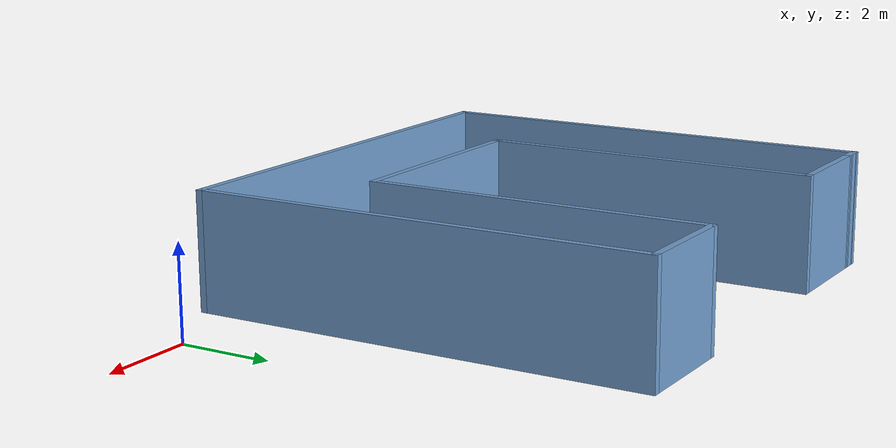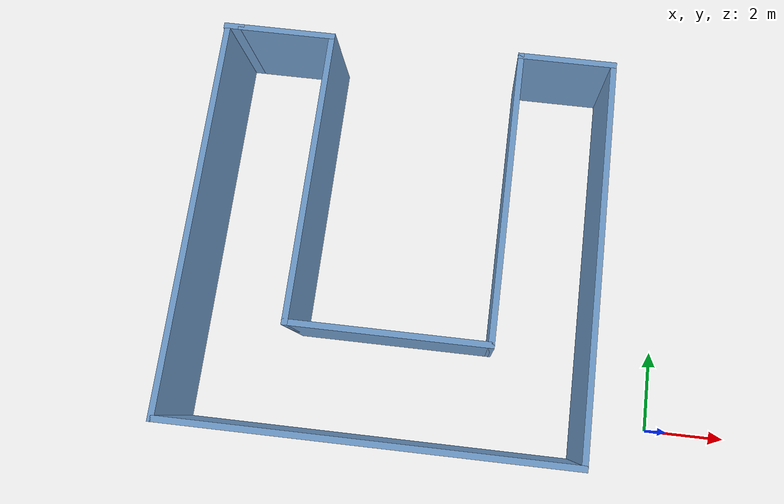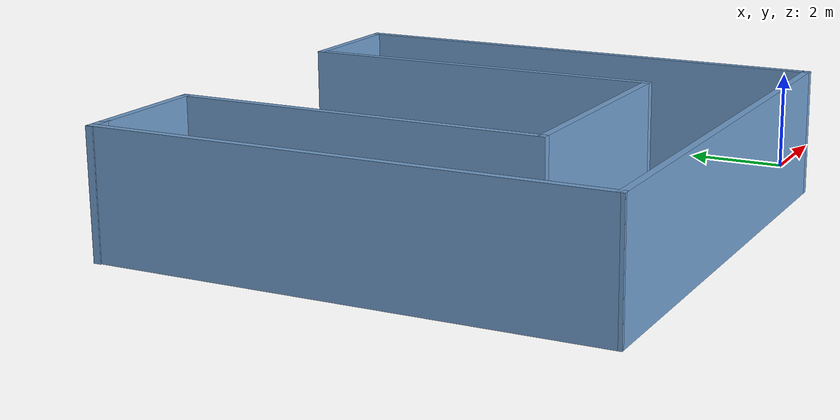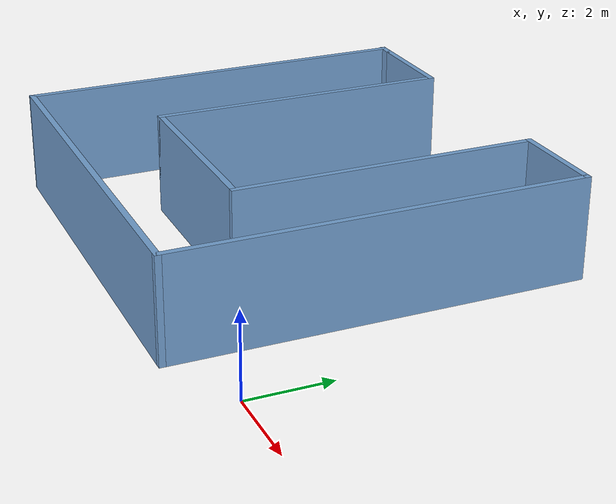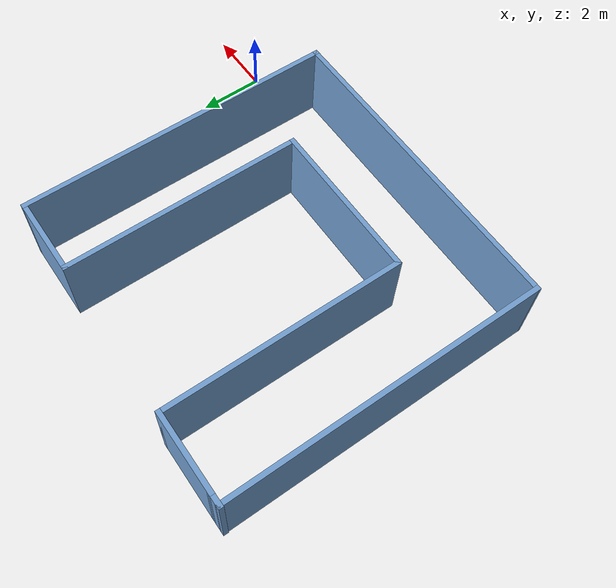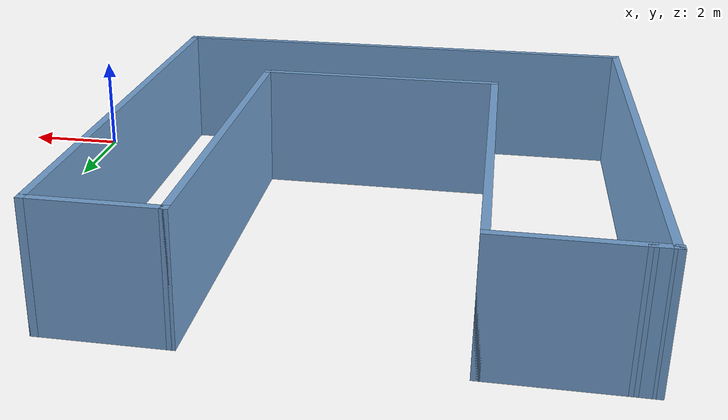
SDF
<?xml version='1.0'?>
<sdf version='1.7'>
  <model name='mybuilding'>
    <pose>-5.93804 3.93508 0 0 -0 0</pose>
    <link name='Wall_10'>
      <collision name='Wall_10_Collision'>
        <geometry>
          <box>
            <size>10 0.15 2.5</size>
          </box>
        </geometry>
        <pose>0 0 1.25 0 -0 0</pose>
      </collision>
      <visual name='Wall_10_Visual'>
        <pose>0 0 1.25 0 -0 0</pose>
        <geometry>
          <box>
            <size>10 0.15 2.5</size>
          </box>
        </geometry>
        <material>
          <script>
            <uri>file://media/materials/scripts/gazebo.material</uri>
            <name>Gazebo/Grey</name>
          </script>
          <ambient>0.447059 0.623529 0.811765 1</ambient>
        </material>
        <meta>
          <layer>0</layer>
        </meta>
      </visual>
      <pose>4.05647 0.000301 0 0 -0 -1.5708</pose>
    </link>
    <link name='Wall_13'>
      <collision name='Wall_13_Collision'>
        <geometry>
          <box>
            <size>10 0.15 2.5</size>
          </box>
        </geometry>
        <pose>0 0 1.25 0 -0 0</pose>
      </collision>
      <visual name='Wall_13_Visual'>
        <pose>0 0 1.25 0 -0 0</pose>
        <geometry>
          <box>
            <size>10 0.15 2.5</size>
          </box>
        </geometry>
        <material>
          <script>
            <uri>file://media/materials/scripts/gazebo.material</uri>
            <name>Gazebo/Grey</name>
          </script>
          <ambient>0.447059 0.623529 0.811765 1</ambient>
        </material>
        <meta>
          <layer>0</layer>
        </meta>
      </visual>
      <pose>-0.868526 -4.92489 0 0 -0 -3.14155</pose>
    </link>
    <link name='Wall_15'>
      <collision name='Wall_15_Collision'>
        <geometry>
          <box>
            <size>0.519435 0.15 2.5</size>
          </box>
        </geometry>
        <pose>0 0 1.25 0 -0 0</pose>
      </collision>
      <visual name='Wall_15_Visual'>
        <pose>0 0 1.25 0 -0 0</pose>
        <geometry>
          <box>
            <size>0.519435 0.15 2.5</size>
          </box>
        </geometry>
        <material>
          <script>
            <uri>file://media/materials/scripts/gazebo.material</uri>
            <name>Gazebo/Grey</name>
          </script>
          <ambient>0.447059 0.623529 0.811765 1</ambient>
        </material>
        <meta>
          <layer>0</layer>
        </meta>
      </visual>
      <pose>-5.67824 4.92511 0 0 -0 0.001034</pose>
    </link>
    <link name='Wall_17'>
      <collision name='Wall_17_Collision'>
        <geometry>
          <box>
            <size>10 0.15 2.5</size>
          </box>
        </geometry>
        <pose>0 0 1.25 0 -0 0</pose>
      </collision>
      <visual name='Wall_17_Visual'>
        <pose>0 0 1.25 0 -0 0</pose>
        <geometry>
          <box>
            <size>10 0.15 2.5</size>
          </box>
        </geometry>
        <material>
          <script>
            <uri>file://media/materials/scripts/gazebo.material</uri>
            <name>Gazebo/Grey</name>
          </script>
          <ambient>0.447059 0.623529 0.811765 1</ambient>
        </material>
        <meta>
          <layer>0</layer>
        </meta>
      </visual>
      <pose>-5.81674 -8e-05 0 0 -0 1.57551</pose>
    </link>
    <link name='Wall_5'>
      <collision name='Wall_5_Collision'>
        <geometry>
          <box>
            <size>2.5 0.15 2.5</size>
          </box>
        </geometry>
        <pose>0 0 1.25 0 -0 0</pose>
      </collision>
      <visual name='Wall_5_Visual'>
        <pose>0 0 1.25 0 -0 0</pose>
        <geometry>
          <box>
            <size>2.5 0.15 2.5</size>
          </box>
        </geometry>
        <material>
          <script>
            <uri>file://media/materials/scripts/gazebo.material</uri>
            <name>Gazebo/Grey</name>
          </script>
          <ambient>0.447059 0.623529 0.811765 1</ambient>
        </material>
        <meta>
          <layer>0</layer>
        </meta>
      </visual>
      <pose>-4.31853 4.9253 0 0 -0 0</pose>
    </link>
    <link name='Wall_6'>
      <collision name='Wall_6_Collision'>
        <geometry>
          <box>
            <size>7.5 0.15 2.5</size>
          </box>
        </geometry>
        <pose>0 0 1.25 0 -0 0</pose>
      </collision>
      <visual name='Wall_6_Visual'>
        <pose>0 0 1.25 0 -0 0</pose>
        <geometry>
          <box>
            <size>7.5 0.15 2.5</size>
          </box>
        </geometry>
        <material>
          <script>
            <uri>file://media/materials/scripts/gazebo.material</uri>
            <name>Gazebo/Grey</name>
          </script>
          <ambient>0.447059 0.623529 0.811765 1</ambient>
        </material>
        <meta>
          <layer>0</layer>
        </meta>
      </visual>
      <pose>-3.14353 1.2503 0 0 -0 -1.5708</pose>
    </link>
    <link name='Wall_7'>
      <collision name='Wall_7_Collision'>
        <geometry>
          <box>
            <size>5 0.15 2.5</size>
          </box>
        </geometry>
        <pose>0 0 1.25 0 -0 0</pose>
      </collision>
      <visual name='Wall_7_Visual'>
        <pose>0 0 1.25 0 -0 0</pose>
        <geometry>
          <box>
            <size>5 0.15 2.5</size>
          </box>
        </geometry>
        <material>
          <script>
            <uri>file://media/materials/scripts/gazebo.material</uri>
            <name>Gazebo/Grey</name>
          </script>
          <ambient>0.447059 0.623529 0.811765 1</ambient>
        </material>
        <meta>
          <layer>0</layer>
        </meta>
      </visual>
      <pose>-0.718526 -2.4247 0 0 -0 0</pose>
    </link>
    <link name='Wall_8'>
      <collision name='Wall_8_Collision'>
        <geometry>
          <box>
            <size>7.5 0.15 2.5</size>
          </box>
        </geometry>
        <pose>0 0 1.25 0 -0 0</pose>
      </collision>
      <visual name='Wall_8_Visual'>
        <pose>0 0 1.25 0 -0 0</pose>
        <geometry>
          <box>
            <size>7.5 0.15 2.5</size>
          </box>
        </geometry>
        <material>
          <script>
            <uri>file://media/materials/scripts/gazebo.material</uri>
            <name>Gazebo/Grey</name>
          </script>
          <ambient>0.447059 0.623529 0.811765 1</ambient>
        </material>
        <meta>
          <layer>0</layer>
        </meta>
      </visual>
      <pose>1.70647 1.2503 0 0 -0 1.5708</pose>
    </link>
    <link name='Wall_9'>
      <collision name='Wall_9_Collision'>
        <geometry>
          <box>
            <size>2.5 0.15 2.5</size>
          </box>
        </geometry>
        <pose>0 0 1.25 0 -0 0</pose>
      </collision>
      <visual name='Wall_9_Visual'>
        <pose>0 0 1.25 0 -0 0</pose>
        <geometry>
          <box>
            <size>2.5 0.15 2.5</size>
          </box>
        </geometry>
        <material>
          <script>
            <uri>file://media/materials/scripts/gazebo.material</uri>
            <name>Gazebo/Grey</name>
          </script>
          <ambient>0.447059 0.623529 0.811765 1</ambient>
        </material>
        <meta>
          <layer>0</layer>
        </meta>
      </visual>
      <pose>2.88147 4.9253 0 0 -0 0</pose>
    </link>
    <static>1</static>
  </model>
</sdf>
